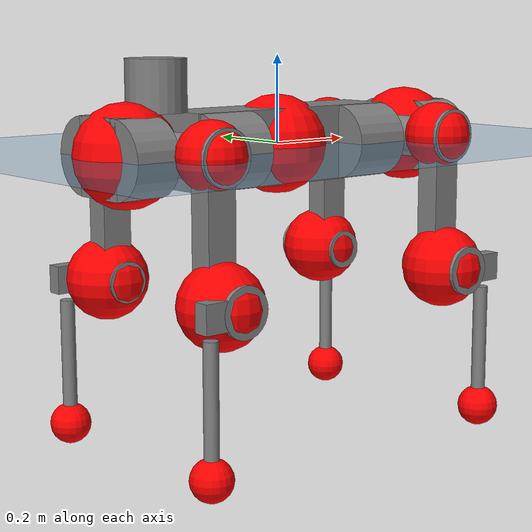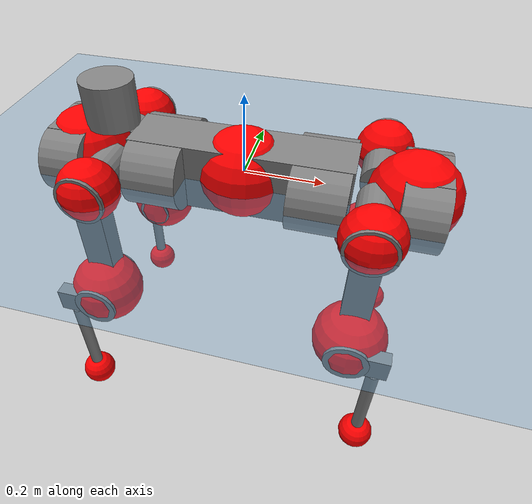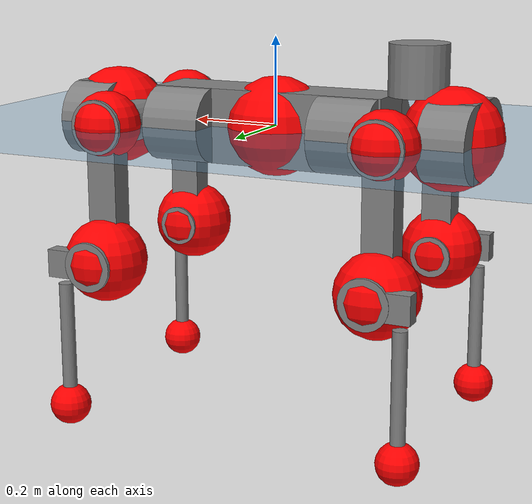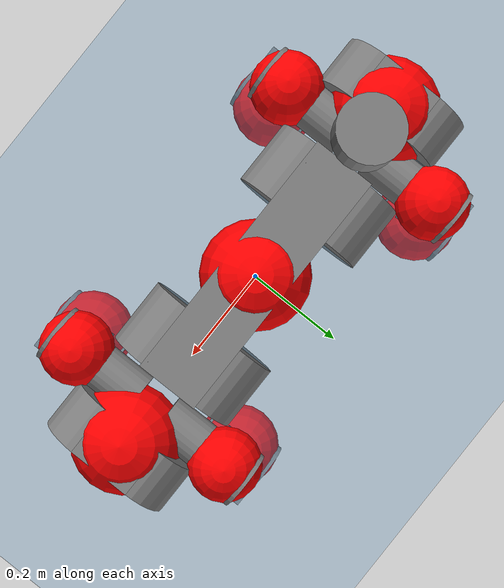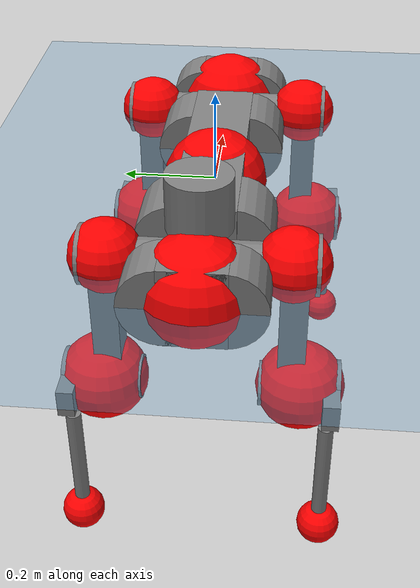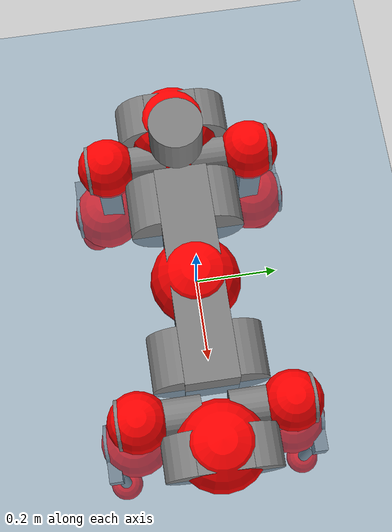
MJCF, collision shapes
<mujoco model="anymal_c">
  <compiler angle="radian" assetdir="assets" balanceinertia="true" inertiafromgeom="false"/>

  <option timestep="0.005" density="1.2" viscosity="2e-05"/>

  <size nkey="1"/>

  <visual>
    <quality shadowsize="8192"/>
    <map shadowclip="0.5"/>
  </visual>

  <default>
    <default class="/">
      <material specular="0" shininess="0.25"/>
      <geom contype="0" conaffinity="0" group="1" solref="-1000 -80"/>
      <site size="0.01 0.005 0.005" group="5"/>
      <general forcelimited="true" forcerange="-80 80" biastype="affine" gainprm="80" biasprm="0 -80 -2"/>
      <default class="anymal_c">
        <joint armature="0.01" damping="0.01" frictionloss="0.1"/>
        <default class="visual">
          <geom type="mesh" group="2"/>
          <default class="visual_zflip"/>
        </default>
        <default class="collision">
          <geom type="cylinder" group="3"/>
          <default class="foot">
            <geom size="0.03 0 0" type="sphere" condim="6" priority="1" friction="0.8 0.02 0.01" solimp="0.015 1 0.03"/>
          </default>
        </default>
      </default>
      <default class="reward_collision_sphere">
        <geom group="5" rgba="1 0 0 1"/>
      </default>
    </default>
  </default>

  <asset>
    <texture type="skybox" colorspace="auto" name="//unnamed_texture_0" builtin="gradient" rgb1="0.95 0.95 0.95" rgb2="0.95 0.95 0.95" width="100" height="600"/>
    <texture type="2d" colorspace="auto" name="texplane" builtin="checker" rgb1="0.345 0.575 0.748" rgb2="0.345 0.575 0.748" markrgb="1 1 1" width="512" height="512"/>
    <texture type="2d" colorspace="linear" name="base" file="base.png"/>
    <texture type="2d" colorspace="linear" name="top_shell" file="top_shell.png"/>
    <texture type="2d" colorspace="linear" name="bottom_shell" file="bottom_shell.png"/>
    <texture type="2d" colorspace="linear" name="remote" file="remote.png"/>
    <texture type="2d" colorspace="linear" name="hatch" file="hatch.png"/>
    <texture type="2d" colorspace="linear" name="handle" file="handle.png"/>
    <texture type="2d" colorspace="linear" name="face" file="face.png"/>
    <texture type="2d" colorspace="linear" name="battery" file="battery.png"/>
    <texture type="2d" colorspace="linear" name="lidar_cage" file="lidar_cage.png"/>
    <texture type="2d" colorspace="linear" name="depth_camera" file="depth_camera.png"/>
    <texture type="2d" colorspace="linear" name="wide_angle_camera" file="wide_angle_camera.png"/>
    <texture type="2d" colorspace="linear" name="lidar" file="lidar.png"/>
    <texture type="2d" colorspace="linear" name="drive" file="drive.png"/>
    <texture type="2d" colorspace="linear" name="hip_l" file="hip_l.png"/>
    <texture type="2d" colorspace="linear" name="shank_l" file="shank_l.png"/>
    <texture type="2d" colorspace="linear" name="foot" file="foot.png"/>
    <texture type="2d" colorspace="linear" name="thigh" file="thigh.png"/>
    <texture type="2d" colorspace="linear" name="shank_r" file="shank_r.png"/>
    <texture type="2d" colorspace="linear" name="hip_r" file="hip_r.png"/>
    <material name="MatPlane" class="/" texture="texplane" texuniform="true" texrepeat="2 2" specular="0.9" shininess="0.5"/>
    <material name="black_plastic" class="/" rgba="0.007 0.007 0.007 1"/>
    <material name="green" class="/" rgba="0.052 0.178 0.033 1"/>
    <material name="red" class="/" rgba="0.178 0.006 0.005 1"/>
    <material name="yellow" class="/" rgba="0.178 0.119 0.006 1"/>
    <material name="lwl" class="/" rgba="0.8 0.8 0.8 1"/>
    <material name="base" class="/" texture="base"/>
    <material name="top_shell" class="/" texture="top_shell"/>
    <material name="bottom_shell" class="/" texture="bottom_shell"/>
    <material name="hip_l" class="/" texture="hip_l"/>
    <material name="thigh" class="/" texture="thigh"/>
    <material name="shank_l" class="/" texture="shank_l"/>
    <material name="foot" class="/" texture="foot"/>
    <material name="hip_r" class="/" texture="hip_r"/>
    <material name="shank" class="/" texture="shank_r"/>
    <material name="hatch" class="/" texture="hatch"/>
    <material name="remote" class="/" texture="remote"/>
    <material name="handle" class="/" texture="handle"/>
    <material name="face" class="/" texture="face"/>
    <material name="depth_camera" class="/" texture="depth_camera"/>
    <material name="wide_angle_camera" class="/" texture="wide_angle_camera"/>
    <material name="battery" class="/" texture="battery"/>
    <material name="lidar_cage" class="/" texture="lidar_cage"/>
    <material name="lidar" class="/" texture="lidar"/>
    <material name="drive" class="/" texture="drive"/>
    <mesh name="base_0" class="/" file="base_0.obj"/>
    <mesh name="base_1" class="/" file="base_1.obj"/>
    <mesh name="base_2" class="/" file="base_2.obj"/>
    <mesh name="base_3" class="/" file="base_3.obj"/>
    <mesh name="base_4" class="/" file="base_4.obj"/>
    <mesh name="base_5" class="/" file="base_5.obj"/>
    <mesh name="top_shell" class="/" file="top_shell.obj"/>
    <mesh name="bottom_shell" class="/" file="bottom_shell.obj"/>
    <mesh name="remote" class="/" file="remote.obj"/>
    <mesh name="handle" class="/" file="handle.obj"/>
    <mesh name="face" class="/" file="face.obj"/>
    <mesh name="wide_angle_camera" class="/" file="wide_angle_camera.obj"/>
    <mesh name="depth_camera" class="/" file="depth_camera.obj"/>
    <mesh name="battery" class="/" file="battery.obj"/>
    <mesh name="lidar_cage" class="/" file="lidar_cage.obj"/>
    <mesh name="lidar" class="/" file="lidar.obj"/>
    <mesh name="drive" class="/" file="drive.obj"/>
    <mesh name="hip_l" class="/" file="hip_l.obj"/>
    <mesh name="thigh" class="/" file="thigh.obj"/>
    <mesh name="shank_l" class="/" file="shank_l.obj"/>
    <mesh name="foot" class="/" file="foot.obj"/>
    <mesh name="hip_r" class="/" file="hip_r.obj"/>
    <mesh name="hatch" class="/" file="hatch.obj"/>
    <mesh name="shank_r" class="/" file="shank_r.obj"/>
  </asset>

  <worldbody>
    <geom name="floor" class="/" size="100 100 0.125" type="plane" group="0" material="MatPlane"/>
    <light name="toplight_shadow" class="/" pos="0 0 5" dir="0.0990148 0.0990148 -0.990148" type="directional" ambient="0.04 0.04 0.04" diffuse="0.55 0.55 0.55" specular="0.12 0.12 0.12"/>
    <light name="toplight_fill" class="/" pos="0 0 5" dir="0.0990148 0.0990148 -0.990148" type="directional" castshadow="false" ambient="0.04 0.04 0.04" diffuse="0.3 0.3 0.3" specular="0.08 0.08 0.08"/>
    <body name="trunk" childclass="anymal_c" pos="-0.0019892 -0.000693392 -0.000629677" quat="1 -0.000463808 9.3832e-05 0.00059529">
      <inertial pos="0.00120626 0.00064757 0.0536655" quat="0.494935 0.49636 0.49808 0.510473" mass="15.8025" diaginertia="0.425 0.243578 0.323781"/>
      <joint name="//unnamed_joint_0" type="free" armature="0" damping="0" frictionloss="0"/>
      <geom name="//unnamed_geom_1" class="visual" material="green" mesh="base_0"/>
      <geom name="//unnamed_geom_2" class="visual" material="yellow" mesh="base_1"/>
      <geom name="//unnamed_geom_3" class="visual" material="red" mesh="base_2"/>
      <geom name="//unnamed_geom_4" class="visual" material="black_plastic" mesh="base_3"/>
      <geom name="//unnamed_geom_5" class="visual" material="lwl" mesh="base_4"/>
      <geom name="//unnamed_geom_6" class="visual" material="base" mesh="base_5"/>
      <geom name="trunk_1" class="collision" size="0.273215 0.0659484 0.0847908" type="box"/>
      <geom name="trunk_2" class="collision" size="0.0847908 0.0683037" pos="0.199617 0.0580551 0" quat="0.707107 0 0.707107 0"/>
      <geom name="trunk_3" class="collision" size="0.0847908 0.0683037" pos="-0.199617 0.0580551 0" quat="0.707107 0 0.707107 0"/>
      <geom name="trunk_4" class="collision" size="0.0847908 0.0683037" pos="0.199617 -0.0580551 0" quat="0.707107 0 0.707107 0"/>
      <geom name="trunk_5" class="collision" size="0.0847908 0.0683037" pos="-0.199617 -0.0580551 0" quat="0.707107 0 0.707107 0"/>
      <geom name="//unnamed_geom_12" class="visual" material="top_shell" mesh="top_shell"/>
      <geom name="//unnamed_geom_13" class="visual" material="bottom_shell" mesh="bottom_shell"/>
      <geom name="//unnamed_geom_14" class="visual" material="remote" mesh="remote"/>
      <geom name="//unnamed_geom_15" class="visual" material="handle" mesh="handle"/>
      <geom name="//unnamed_geom_16" class="visual" pos="0.38042 0 0" quat="1 0 0 0" material="face" mesh="face"/>
      <geom name="trunk_6" class="collision" size="0.0518166 0.0659484 0.0847908" pos="0.430897 0 0" type="box"/>
      <geom name="//unnamed_geom_18" class="collision" size="0.0847908 0.0518166" pos="0.430897 0.0580551 0" quat="0.707107 0 0.707107 0"/>
      <geom name="//unnamed_geom_19" class="collision" size="0.0847908 0.0518166" pos="0.430897 -0.0580551 0" quat="0.707107 0 0.707107 0"/>
      <geom name="//unnamed_geom_20" class="visual" pos="0.4237 0 -0.0327403" quat="0.965926 0 0.258819 0" material="depth_camera" mesh="depth_camera"/>
      <geom name="//unnamed_geom_21" class="visual" pos="0.470821 0 0.016156" material="wide_angle_camera" mesh="wide_angle_camera"/>
      <geom name="//unnamed_geom_22" class="visual_zflip" pos="-0.38042 0 0" quat="0 0 0 1" material="face" mesh="face"/>
      <geom name="trunk_7" class="collision" size="0.0518166 0.0659484 0.0847908" pos="-0.430897 0 0" quat="0 0 0 1" type="box"/>
      <geom name="//unnamed_geom_24" class="collision" size="0.0847908 0.0518166" pos="-0.430897 -0.0580551 0" quat="0 -0.707107 0 0.707107"/>
      <geom name="//unnamed_geom_25" class="collision" size="0.0847908 0.0518166" pos="-0.430897 0.0580551 0" quat="0 -0.707107 0 0.707107"/>
      <geom name="//unnamed_geom_26" class="visual" pos="-0.4237 0 -0.0327403" quat="0 -0.258819 0 0.965926" material="depth_camera" mesh="depth_camera"/>
      <geom name="//unnamed_geom_27" class="visual_zflip" pos="-0.470821 0 0.016156" quat="0 0 0 1" material="wide_angle_camera" mesh="wide_angle_camera"/>
      <geom name="//unnamed_geom_28" class="visual" material="battery" mesh="battery"/>
      <geom name="//unnamed_geom_29" class="visual" pos="0 0.0622592 0.0301244" quat="0.683013 -0.183013 0.183013 0.683013" material="depth_camera" mesh="depth_camera"/>
      <geom name="//unnamed_geom_30" class="visual" pos="0 -0.0622592 0.0301244" quat="0.683013 0.183013 0.183013 -0.683013" material="depth_camera" mesh="depth_camera"/>
      <geom name="//unnamed_geom_31" class="visual" pos="-0.334072 0 0.0793229" quat="1 0 0 0" material="lidar_cage" mesh="lidar_cage"/>
      <geom name="trunk_8" class="collision" size="0.0659484 0.0565272" pos="-0.334072 0 0.144076"/>
      <geom name="//unnamed_geom_33" class="visual" pos="-0.334072 -3.47382e-05 0.153465" quat="0.707107 0 0 -0.707107" material="lidar" mesh="lidar"/>
      <geom name="//unnamed_geom_34" class="visual" pos="0.275242 0.086342 -4.31019e-09" quat="0.258819 0.965926 0 0" material="drive" mesh="drive"/>
      <geom name="//unnamed_geom_35" class="visual" pos="0.275242 -0.086342 4.31019e-09" quat="0.258819 -0.965926 0 0" material="drive" mesh="drive"/>
      <geom name="//unnamed_geom_36" class="visual" pos="-0.275242 0.086342 4.31019e-09" quat="0 0 0.965926 -0.258819" material="drive" mesh="drive"/>
      <geom name="//unnamed_geom_37" class="visual" pos="-0.275242 -0.086342 -4.31019e-09" quat="0 0 -0.965926 -0.258819" material="drive" mesh="drive"/>
      <geom name="//unnamed_geom_38" class="visual" pos="0.106462 0 0.0787833" quat="1 0 0 0" material="hatch" mesh="hatch"/>
      <geom name="//unnamed_geom_39" class="reward_collision_sphere" size="0.113054"/>
      <geom name="//unnamed_geom_40" class="reward_collision_sphere" size="0.113054" pos="0.413001 0 0"/>
      <geom name="//unnamed_geom_41" class="reward_collision_sphere" size="0.113054" pos="-0.413001 0 0"/>
      <site name="imu" pos="0.233301 -0.00589204 0.0523397" size="0.0094212"/>
      <camera name="track" pos="0 -1.65872 0" quat="0.707107 0.707107 0 0" mode="trackcom"/>
      <camera name="ego_camera" pos="0.413001 0 -0.0431689" quat="-0.5 -0.5 0.5 0.5"/>
      <body name="LF_HIP" pos="0.276094 0.0873244 -0.00141205" quat="0.259872 0.965643 -0.000958189 0.000102449">
        <inertial pos="0.0513963 -0.0121621 -0.00783632" quat="-0.137878 0.706896 -0.136159 0.680256" mass="2.40076" diaginertia="0.0039424 0.00198689 0.0050245"/>
        <joint name="LF_HAA" pos="0 0 0" axis="0.99996 0.0030002 -0.00847713" range="-0.66552 0.496009" armature="0.0105206" damping="0.0091847" frictionloss="0.0979614"/>
        <geom name="//unnamed_geom_42" class="visual" pos="0 -0.000253549 4.16452e-05" quat="0.258819 -0.965926 0 0" material="hip_l" mesh="hip_l"/>
        <geom name="//unnamed_geom_43" class="visual" pos="0.054975 -0.0655385 -0.0396868" quat="0.183013 -0.683013 0.683013 0.183013" material="drive" mesh="drive"/>
        <geom name="//unnamed_geom_44" class="collision" size="0.047106 0.0659484" pos="0.054975 -0.00991896 -0.00745203" quat="-0.353553 -0.612372 0.612372 -0.353553"/>
        <body name="LF_THIGH" pos="0.0554656 -0.0605219 -0.0449515" quat="0.183099 -0.683012 0.68296 0.183125">
          <inertial pos="0.0279661 -0.00261112 -0.26766" quat="0.993499 -0.00158981 -0.0790253 0.0819262" mass="2.61459" diaginertia="0.0195917 0.0116641 0.00608595"/>
          <joint name="LF_HFE" pos="0 0 0" axis="0.999997 0.0014764 0.00181504" stiffness="0.000654583" range="-3.13828 3.19202" armature="0.00911076" damping="0" frictionloss="0.0940923"/>
          <geom name="//unnamed_geom_45" class="visual" pos="0.00175923 2.77213e-06 0" quat="0.707107 0 0 -0.707107" material="thigh" mesh="thigh"/>
          <geom name="//unnamed_geom_46" class="collision" size="0.0612378 0.0376848" pos="0.0367112 0 0" quat="0.5 0.5 -0.5 -0.5"/>
          <geom name="//unnamed_geom_47" class="collision" size="0.0353295 0.0282636 0.133135" pos="0.0275334 0 -0.152509" quat="0.707107 0 0 -0.707107" type="box"/>
          <geom name="//unnamed_geom_48" class="visual" pos="0.0920533 0 -0.307578" quat="1 0 0 0" material="drive" mesh="drive"/>
          <geom name="//unnamed_geom_49" class="collision" size="0.047106 0.0659484" pos="0.0278087 0 -0.307578" quat="0.707107 0 0.707107 0"/>
          <geom name="//unnamed_geom_50" class="reward_collision_sphere" size="0.0753696" pos="0.0229445 0 0"/>
          <body name="LF_SHANK" pos="0.0944226 0.00214145 -0.305711" quat="1 4.30448e-05 -1.59895e-05 -4.7355e-05">
            <inertial pos="0.00585654 -0.0517204 -0.0853071" quat="0.992908 -0.116054 -0.0009201 -0.0257804" mass="0.51082" diaginertia="0.00680065 0.00368919 0.00164535"/>
            <joint name="LF_KFE" pos="0 0 0" axis="0.999999 0.000811301 0.000812353" range="-3.10661 3.08684" armature="0.00926908" damping="0.0103397" frictionloss="0.0964783"/>
            <geom name="//unnamed_geom_51" class="visual" pos="0.000573646 0.00305871 0" quat="0.707107 0 0 -0.707107" material="shank_l" mesh="shank_l"/>
            <geom name="LF_kfe_act" class="collision" size="0.0565272 0.0188424" pos="0.0183556 0 0" quat="0.5 0.5 -0.5 -0.5"/>
            <geom name="//unnamed_geom_53" class="collision" size="0.054171 0.0317966 0.0179003" pos="0.0183556 -0.0476873 0" quat="0.5 0.5 -0.5 -0.5" type="box"/>
            <geom name="//unnamed_geom_54" class="visual" pos="0.0119769 -0.0719564 -0.364745" quat="0.382683 0 0 -0.92388" material="foot" mesh="foot"/>
            <geom name="LF_calf" class="collision" size="0.0164871 0.133076" pos="0.011977 -0.0729421 -0.182372" quat="0.707107 0 0 -0.707107"/>
            <geom name="LF_foot" class="foot" size="0.0268638" pos="0.011977 -0.0729421 -0.340462" quat="0.707107 0 0 -0.707107"/>
            <geom name="//unnamed_geom_57" class="reward_collision_sphere" size="0.094212" pos="-0.045889 0 0"/>
            <geom name="//unnamed_geom_58" class="reward_collision_sphere" size="0.047106" pos="0.011977 -0.0729421 -0.340462"/>
            <site name="LF_foot" class="foot" pos="0.011977 -0.0729421 -0.340462" quat="0.707107 0 0 -0.707107" size="0.0094212"/>
          </body>
        </body>
      </body>
      <body name="RF_HIP" pos="0.276588 -0.0861857 0.00290163" quat="0.258848 -0.965918 -4.63532e-05 1.50319e-05">
        <inertial pos="0.0531245 0.0114888 -0.00870665" quat="0.126591 0.67817 0.138334 0.71058" mass="2.40932" diaginertia="0.00390672 0.00199391 0.00491907"/>
        <joint name="RF_HAA" pos="0 0 0" axis="0.999997 -0.00225952 -0.000257808" range="-0.451652 0.730206" armature="0.00942943" damping="0.00781635" frictionloss="0.0912037"/>
        <geom name="//unnamed_geom_59" class="visual" pos="0 0.000253547 4.16451e-05" quat="0.258819 0.965926 0 0" material="hip_r" mesh="hip_r"/>
        <geom name="//unnamed_geom_60" class="visual" pos="0.054975 0.0655385 -0.0396868" quat="0.183013 0.683013 0.683013 -0.183013" material="drive" mesh="drive"/>
        <geom name="//unnamed_geom_61" class="collision" size="0.047106 0.0659484" pos="0.054975 0.00991896 -0.00745203" quat="-0.353553 0.612372 0.612372 0.353553"/>
        <body name="RF_THIGH" pos="0.0558076 0.06177 -0.0480337" quat="0.182914 0.683242 0.682863 -0.182814">
          <inertial pos="0.0282286 2.20617e-05 -0.267625" quat="0.994165 -0.00659719 -0.0739689 0.0782394" mass="2.62781" diaginertia="0.0201662 0.0121419 0.0063422"/>
          <joint name="RF_HFE" pos="0 0 0" axis="1 -0.000228667 8.60837e-05" stiffness="0.00600262" range="-3.19675 3.18672" armature="0.00838307" damping="0.00999281" frictionloss="0.0891783"/>
          <geom name="//unnamed_geom_62" class="visual" pos="0.00175923 2.77213e-06 0" quat="0.707107 0 0 -0.707107" material="thigh" mesh="thigh"/>
          <geom name="//unnamed_geom_63" class="collision" size="0.0612378 0.0376848" pos="0.0367112 0 0" quat="0.5 0.5 0.5 0.5"/>
          <geom name="//unnamed_geom_64" class="collision" size="0.0353295 0.0282636 0.133135" pos="0.0275334 0 -0.152509" quat="0.707107 0 0 0.707107" type="box"/>
          <geom name="//unnamed_geom_65" class="visual" pos="0.0920533 0 -0.307578" quat="1 0 0 0" material="drive" mesh="drive"/>
          <geom name="//unnamed_geom_66" class="collision" size="0.047106 0.0659484" pos="0.0278087 0 -0.307578" quat="0.707107 0 0.707107 0"/>
          <geom name="//unnamed_geom_67" class="reward_collision_sphere" size="0.0753696" pos="0.0229445 0 0"/>
          <body name="RF_SHANK" pos="0.0928202 0.000175542 -0.308456" quat="1 -1.78054e-05 -2.50467e-05 -7.76863e-05">
            <inertial pos="0.00413579 0.0514126 -0.0844222" quat="0.993393 0.112064 0.0011015 0.024726" mass="0.463036" diaginertia="0.00640419 0.00362559 0.00153411"/>
            <joint name="RF_KFE" pos="0 0 0" axis="0.999999 -0.000189657 0.00133082" range="-3.13171 3.11975" armature="0.0104735" damping="0.00951315" frictionloss="0.0943677"/>
            <geom name="//unnamed_geom_68" class="visual" pos="0.000573643 -0.00305871 0" quat="0.707107 0 0 0.707107" material="shank" mesh="shank_r"/>
            <geom name="RF_kfe_act" class="collision" size="0.0565272 0.0188424" pos="0.0183556 0 0" quat="0.5 0.5 0.5 0.5"/>
            <geom name="//unnamed_geom_70" class="collision" size="0.054171 0.0317966 0.0179003" pos="0.0183556 0.0476873 0" quat="0.5 0.5 0.5 0.5" type="box"/>
            <geom name="//unnamed_geom_71" class="visual" pos="0.0119772 0.0719564 -0.364745" quat="0.382683 0 0 0.92388" material="foot" mesh="foot"/>
            <geom name="RF_calf" class="collision" size="0.0164871 0.133076" pos="0.011977 0.0729421 -0.182372" quat="0.707107 0 0 0.707107"/>
            <geom name="RF_foot" class="foot" size="0.0281876" pos="0.011977 0.0729421 -0.340462" quat="0.707107 0 0 0.707107"/>
            <geom name="//unnamed_geom_74" class="reward_collision_sphere" size="0.094212" pos="-0.045889 0 0"/>
            <geom name="//unnamed_geom_75" class="reward_collision_sphere" size="0.047106" pos="0.011977 0.0729421 -0.340462"/>
            <site name="RF_foot" class="foot" pos="0.011977 0.0729421 -0.340462" quat="0.707107 0 0 0.707107" size="0.0094212"/>
          </body>
        </body>
      </body>
      <body name="LH_HIP" pos="-0.274147 0.0864965 -0.00171364" quat="3.1199e-05 -2.52659e-05 0.965915 -0.25886">
        <inertial pos="0.0521576 0.0124692 -0.0117253" quat="0.135102 0.679573 0.125072 0.71013" mass="2.41731" diaginertia="0.00396205 0.00189924 0.00485291"/>
        <joint name="LH_HAA" pos="0 0 0" axis="0.999999 0.00106131 0.000600572" range="-0.440418 0.776657" armature="0.00946732" damping="0.00219471" frictionloss="0.106909"/>
        <geom name="//unnamed_geom_76" class="visual" pos="0 0.000253547 4.16451e-05" quat="-0.258819 -0.965926 0 0" material="hip_r" mesh="hip_r"/>
        <geom name="//unnamed_geom_77" class="visual" pos="0.054975 0.0655385 -0.0396868" quat="0.183013 0.683013 0.683013 -0.183013" material="drive" mesh="drive"/>
        <geom name="//unnamed_geom_78" class="collision" size="0.047106 0.0659484" pos="0.054975 0.00991896 -0.00745203" quat="-0.353553 0.612372 0.612372 0.353553"/>
        <body name="LH_THIGH" pos="0.0549603 0.0610564 -0.0473313" quat="0.183027 0.683045 0.682976 -0.183016">
          <inertial pos="0.0256997 -0.000754285 -0.267543" quat="0.992601 0.00815889 -0.082002 0.0891799" mass="2.59646" diaginertia="0.0190096 0.0117933 0.0059129"/>
          <joint name="LH_HFE" pos="0 0 0" axis="0.99988 0.0130028 0.00846958" range="-3.19568 3.16144" armature="0.00923512" damping="0.0044805" frictionloss="0.0929709"/>
          <geom name="//unnamed_geom_79" class="visual" pos="0.00175923 2.77213e-06 0" quat="0.707107 0 0 -0.707107" material="thigh" mesh="thigh"/>
          <geom name="//unnamed_geom_80" class="collision" size="0.0612378 0.0376848" pos="0.0367112 0 0" quat="0.5 0.5 -0.5 -0.5"/>
          <geom name="//unnamed_geom_81" class="collision" size="0.0353295 0.0282636 0.133135" pos="0.0275334 0 -0.152509" quat="0.707107 0 0 -0.707107" type="box"/>
          <geom name="//unnamed_geom_82" class="visual" pos="0.0920533 0 -0.307578" quat="1 0 0 0" material="drive" mesh="drive"/>
          <geom name="//unnamed_geom_83" class="collision" size="0.047106 0.0659484" pos="0.0278087 0 -0.307578" quat="0.707107 0 0.707107 0"/>
          <geom name="//unnamed_geom_84" class="reward_collision_sphere" size="0.0753696" pos="0.0229445 0 0"/>
          <body name="LH_SHANK" pos="0.091176 -0.00091349 -0.309772" quat="1 -0.000113691 0.000144057 -8.78263e-05">
            <inertial pos="0.00608389 0.0493124 -0.0853887" quat="0.994124 0.105553 0.00463356 0.023552" mass="0.476721" diaginertia="0.00660828 0.00360138 0.00164363"/>
            <joint name="LH_KFE" pos="0 0 0" axis="0.999974 -0.00680749 -0.0024466" range="-3.15984 3.14024" armature="0.00928977" damping="0.00394383" frictionloss="0.0998077"/>
            <geom name="//unnamed_geom_85" class="visual" pos="0.000573643 -0.00305871 0" quat="-0.707107 0 0 -0.707107" material="shank" mesh="shank_r"/>
            <geom name="LH_kfe_act" class="collision" size="0.0565272 0.0188424" pos="0.0183556 0 0" quat="0.5 0.5 -0.5 -0.5"/>
            <geom name="//unnamed_geom_87" class="collision" size="0.054171 0.0317966 0.0179003" pos="0.0183556 0.0476873 0" quat="0.5 0.5 -0.5 -0.5" type="box"/>
            <geom name="//unnamed_geom_88" class="visual" pos="0.0119772 0.0719564 -0.364745" quat="-0.382683 0 0 -0.92388" material="foot" mesh="foot"/>
            <geom name="LH_calf" class="collision" size="0.0164871 0.133076" pos="0.011977 0.0729421 -0.182372" quat="0.707107 0 0 -0.707107"/>
            <geom name="LH_foot" class="foot" size="0.0320124" pos="0.011977 0.0729421 -0.340462" quat="0.707107 0 0 -0.707107"/>
            <geom name="//unnamed_geom_91" class="reward_collision_sphere" size="0.094212" pos="-0.045889 0 0"/>
            <geom name="//unnamed_geom_92" class="reward_collision_sphere" size="0.047106" pos="0.011977 0.0729421 -0.340462"/>
            <site name="LH_foot" class="foot" pos="0.011977 0.0729421 -0.340462" quat="0.707107 0 0 -0.707107" size="0.0094212"/>
          </body>
        </body>
      </body>
      <body name="RH_HIP" pos="-0.275254 -0.0854439 0.00112042" quat="0.00018524 -2.21097e-05 -0.966009 -0.258507">
        <inertial pos="0.0523951 -0.0101312 -0.0112146" quat="-0.128463 0.709946 -0.135342 0.679085" mass="2.25118" diaginertia="0.0037293 0.00188972 0.00466277"/>
        <joint name="RH_HAA" pos="0 0 0" axis="0.999989 -0.00347257 -0.00324502" range="-0.733321 0.444545" armature="0.00897311" damping="0" frictionloss="0.0919219"/>
        <geom name="//unnamed_geom_93" class="visual" pos="0 -0.000253549 4.16452e-05" quat="-0.258819 0.965926 0 0" material="hip_l" mesh="hip_l"/>
        <geom name="//unnamed_geom_94" class="visual" pos="0.054975 -0.0655385 -0.0396868" quat="-0.183013 0.683013 -0.683013 -0.183013" material="drive" mesh="drive"/>
        <geom name="//unnamed_geom_95" class="collision" size="0.047106 0.0659484" pos="0.054975 -0.00991896 -0.00745203" quat="0.353553 0.612372 -0.612372 0.353553"/>
        <body name="RH_THIGH" pos="0.0537688 -0.0594136 -0.0425018" quat="-0.182959 0.682864 -0.68326 -0.182698">
          <inertial pos="0.027235 0.00190128 -0.264867" quat="0.993177 -0.00531065 -0.0813074 0.083423" mass="2.41131" diaginertia="0.0191474 0.0113801 0.00611683"/>
          <joint name="RH_HFE" pos="0 0 0" axis="0.999998 0.00180161 -0.000727738" stiffness="0.00727132" range="-3.19482 3.1971" armature="0.0097405" damping="0.00780289" frictionloss="0.0824656"/>
          <geom name="//unnamed_geom_96" class="visual" pos="0.00175923 2.77213e-06 0" quat="0.707107 0 0 -0.707107" material="thigh" mesh="thigh"/>
          <geom name="//unnamed_geom_97" class="collision" size="0.0612378 0.0376848" pos="0.0367112 0 0" quat="0.5 0.5 0.5 0.5"/>
          <geom name="//unnamed_geom_98" class="collision" size="0.0353295 0.0282636 0.133135" pos="0.0275334 0 -0.152509" quat="0.707107 0 0 0.707107" type="box"/>
          <geom name="//unnamed_geom_99" class="visual" pos="0.0920533 0 -0.307578" quat="1 0 0 0" material="drive" mesh="drive"/>
          <geom name="//unnamed_geom_100" class="collision" size="0.047106 0.0659484" pos="0.0278087 0 -0.307578" quat="0.707107 0 0.707107 0"/>
          <geom name="//unnamed_geom_101" class="reward_collision_sphere" size="0.0753696" pos="0.0229445 0 0"/>
          <body name="RH_SHANK" pos="0.0941451 0.0006757 -0.306037" quat="1 0.000263526 0.000611595 9.97285e-05">
            <inertial pos="0.00459604 -0.0507936 -0.0867776" quat="0.993267 -0.113153 0.00158181 -0.0248003" mass="0.468141" diaginertia="0.0065603 0.0035444 0.00160998"/>
            <joint name="RH_KFE" pos="0 0 0" axis="0.999995 -0.00214246 -0.00229782" range="-3.13031 3.15794" armature="0.00927494" damping="0" frictionloss="0.0929117"/>
            <geom name="//unnamed_geom_102" class="visual" pos="0.000573646 0.00305871 0" quat="0.707107 0 0 -0.707107" material="shank_l" mesh="shank_l"/>
            <geom name="RH_kfe_act" class="collision" size="0.0565272 0.0188424" pos="0.0183556 0 0" quat="0.5 0.5 0.5 0.5"/>
            <geom name="//unnamed_geom_104" class="collision" size="0.054171 0.0317966 0.0179003" pos="0.0183556 -0.0476873 0" quat="0.5 0.5 0.5 0.5" type="box"/>
            <geom name="//unnamed_geom_105" class="visual" pos="0.0119769 -0.0719564 -0.364745" quat="0.382683 0 0 -0.92388" material="foot" mesh="foot"/>
            <geom name="RH_calf" class="collision" size="0.0164871 0.133076" pos="0.011977 -0.0729421 -0.182372" quat="0.707107 0 0 0.707107"/>
            <geom name="RH_foot" class="foot" size="0.028914" pos="0.011977 -0.0729421 -0.340462" quat="0.707107 0 0 0.707107"/>
            <geom name="//unnamed_geom_108" class="reward_collision_sphere" size="0.094212" pos="-0.045889 0 0"/>
            <geom name="//unnamed_geom_109" class="reward_collision_sphere" size="0.047106" pos="0.011977 -0.0729421 -0.340462"/>
            <site name="RH_foot" class="foot" pos="0.011977 -0.0729421 -0.340462" quat="0.707107 0 0 0.707107" size="0.0094212"/>
          </body>
        </body>
      </body>
    </body>
  </worldbody>

  <contact>
    <pair class="/" geom1="floor" geom2="LF_foot" name="//unnamed_contact_0"/>
    <pair class="/" geom1="floor" geom2="RF_foot" name="//unnamed_contact_1"/>
    <pair class="/" geom1="floor" geom2="LH_foot" name="//unnamed_contact_2"/>
    <pair class="/" geom1="floor" geom2="RH_foot" name="//unnamed_contact_3"/>
  </contact>

  <actuator>
    <general name="LF_HAA" class="/" joint="LF_HAA" forcerange="-72.5752 72.5752" gainprm="73.7599" biasprm="0 -73.7599 -1.99251"/>
    <general name="LF_HFE" class="/" joint="LF_HFE" forcerange="-82.6885 82.6885" gainprm="73.7599" biasprm="0 -73.7599 -1.99251"/>
    <general name="LF_KFE" class="/" joint="LF_KFE" forcerange="-67.7435 67.7435" gainprm="73.7599" biasprm="0 -73.7599 -1.99251"/>
    <general name="RF_HAA" class="/" joint="RF_HAA" forcerange="-74.6717 74.6717" gainprm="73.7599" biasprm="0 -73.7599 -1.99251"/>
    <general name="RF_HFE" class="/" joint="RF_HFE" forcerange="-81.6251 81.6251" gainprm="73.7599" biasprm="0 -73.7599 -1.99251"/>
    <general name="RF_KFE" class="/" joint="RF_KFE" forcerange="-82.2406 82.2406" gainprm="73.7599" biasprm="0 -73.7599 -1.99251"/>
    <general name="LH_HAA" class="/" joint="LH_HAA" forcerange="-83.2944 83.2944" gainprm="73.7599" biasprm="0 -73.7599 -1.99251"/>
    <general name="LH_HFE" class="/" joint="LH_HFE" forcerange="-78.2358 78.2358" gainprm="73.7599" biasprm="0 -73.7599 -1.99251"/>
    <general name="LH_KFE" class="/" joint="LH_KFE" forcerange="-74.2875 74.2875" gainprm="73.7599" biasprm="0 -73.7599 -1.99251"/>
    <general name="RH_HAA" class="/" joint="RH_HAA" forcerange="-76.3063 76.3063" gainprm="73.7599" biasprm="0 -73.7599 -1.99251"/>
    <general name="RH_HFE" class="/" joint="RH_HFE" forcerange="-68.1857 68.1857" gainprm="73.7599" biasprm="0 -73.7599 -1.99251"/>
    <general name="RH_KFE" class="/" joint="RH_KFE" forcerange="-68.7545 68.7545" gainprm="73.7599" biasprm="0 -73.7599 -1.99251"/>
  </actuator>

  <sensor>
    <gyro site="imu" name="imu_angular_velocity"/>
    <velocimeter site="imu" name="imu_linear_velocity"/>
    <framelinvel objtype="site" objname="LF_foot" name="LF_foot_global_linear_velocity"/>
    <framelinvel objtype="site" objname="RF_foot" name="RF_foot_global_linear_velocity"/>
    <framelinvel objtype="site" objname="LH_foot" name="LH_foot_global_linear_velocity"/>
    <framelinvel objtype="site" objname="RH_foot" name="RH_foot_global_linear_velocity"/>
  </sensor>

  <keyframe>
    <key name="home" qpos="0 0 0.55 1 0 0 0 0 0.4 -0.8 0 -0.4 0.8 0 -0.4 0.8 0 0.4 -0.8"/>
  </keyframe>
</mujoco>
